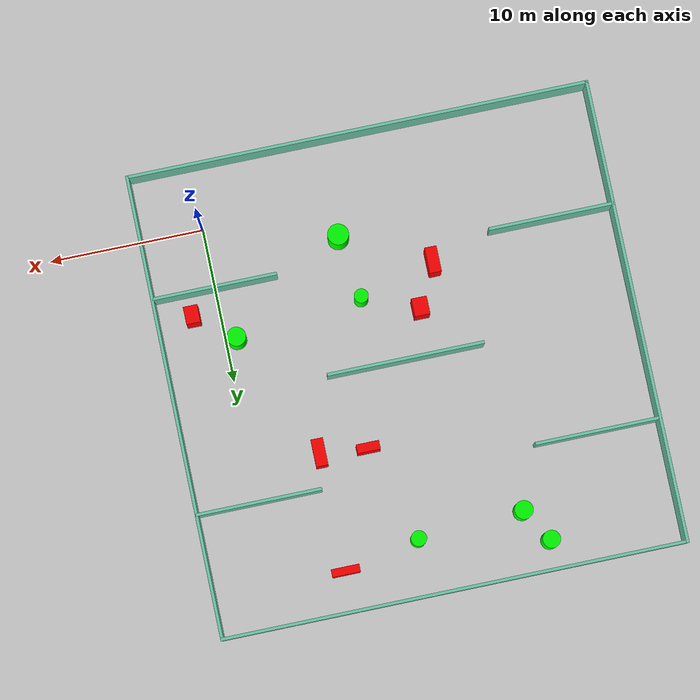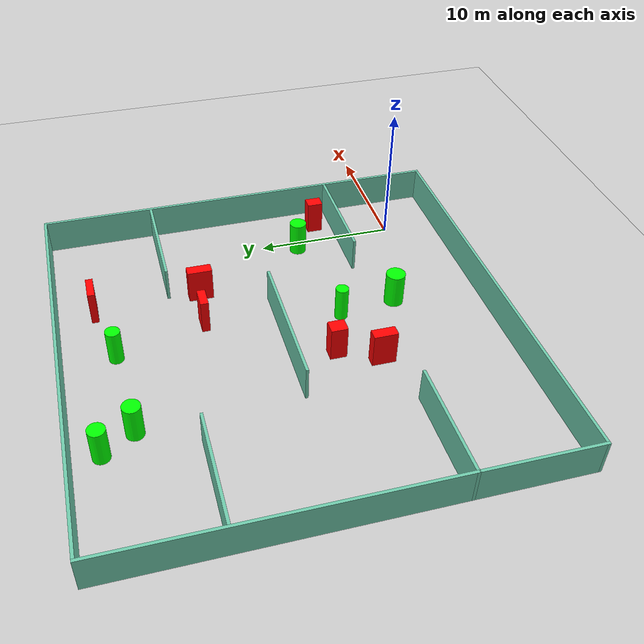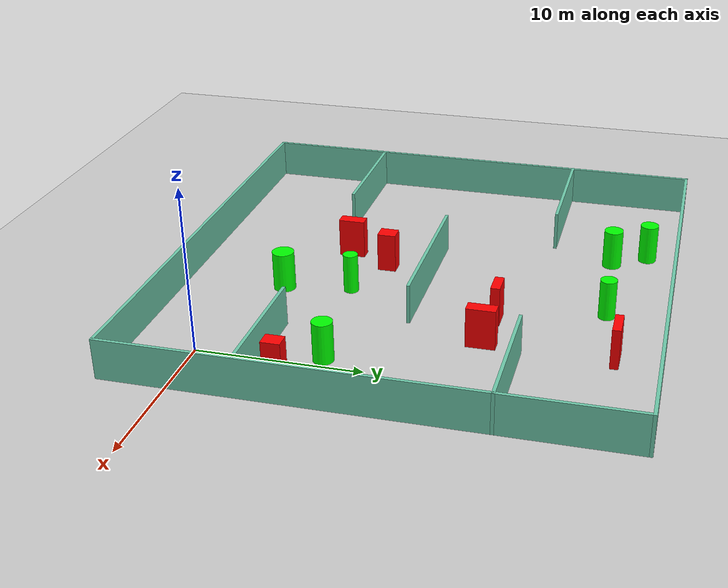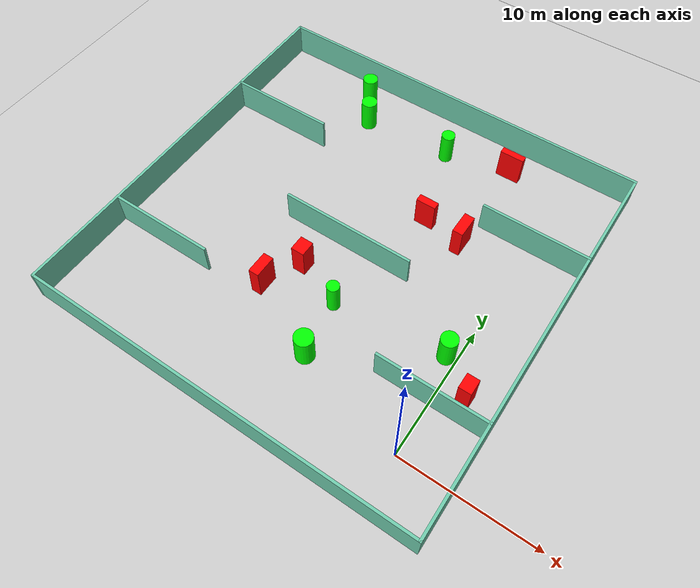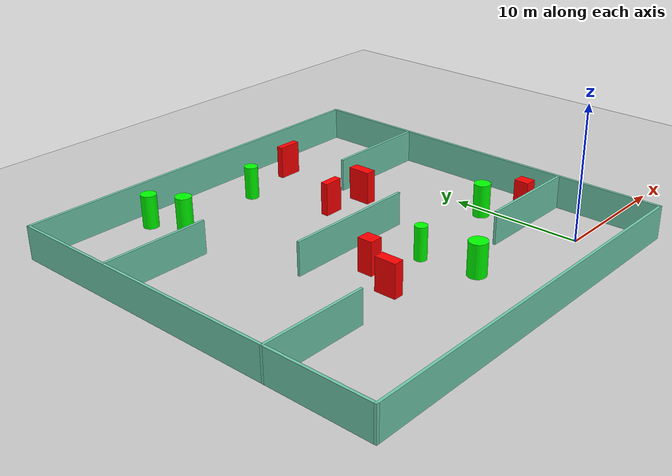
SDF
<sdf version="1.7">
 <world name="default">
  <light name="sun" type="directional">
   <pose>0 0 10 0 -0 0</pose>
   <diffuse>0.8 0.8 0.8 1</diffuse>
   <specular>0.2 0.2 0.2 1</specular>
   <attenuation>
    <range>1000</range>
    <constant>0.9</constant>
    <linear>0.01</linear>
    <quadratic>0.001</quadratic>
   </attenuation>
   <direction>-0.5 0.1 -0.9</direction>
   <spot><inner_angle>0</inner_angle><outer_angle>0</outer_angle><falloff>0</falloff></spot>
  </light>
  <model name="ground_plane">
   <static>1</static>
   <link name="link">
    <collision name="collision">
     <geometry><plane><normal>0 0 1</normal><size>100 100</size></plane></geometry>
     <surface>
      <contact><collide_bitmask>65535</collide_bitmask></contact>
      <friction><ode><mu>100</mu><mu2>50</mu2></ode></friction>
     </surface>
    </collision>
    <visual name="visual">
     <cast_shadows>0</cast_shadows>
     <geometry><plane><normal>0 0 1</normal><size>100 100</size></plane></geometry>
     <material>
      <script><uri>file://media/materials/scripts/gazebo.material</uri><name>Gazebo/Grey</name></script>
     </material>
    </visual>
   </link>
  </model>
  <gravity>0 0 -9.8</gravity>
  <magnetic_field>6e-06 2.3e-05 -4.2e-05</magnetic_field>
  <atmosphere type="adiabatic"/>
  <physics type="ode">
   <max_step_size>0.001</max_step_size>
   <real_time_factor>1</real_time_factor>
   <real_time_update_rate>1000</real_time_update_rate>
  </physics>
  <scene><ambient>0.4 0.4 0.4 1</ambient><background>0.7 0.7 0.7 1</background><shadows>1</shadows></scene>
  <spherical_coordinates>
   <surface_model>EARTH_WGS84</surface_model>
   <latitude_deg>0</latitude_deg>
   <longitude_deg>0</longitude_deg>
   <elevation>0</elevation>
   <heading_deg>0</heading_deg>
  </spherical_coordinates>
  <model name="my_base_walls">
   <link name="Wall_10">
    <collision name="Wall_10_Collision">
     <geometry><box><size>8.2 0.2 2.5</size></box></geometry>
     <pose>0 0 1.25 0 -0 0</pose>
    </collision>
    <visual name="Wall_10_Visual">
     <pose>0 0 1.25 0 -0 0</pose>
     <geometry><box><size>8.2 0.2 2.5</size></box></geometry>
     <material>
      <script><uri>file://media/materials/scripts/gazebo.material</uri><name>Gazebo/Grey</name></script>
      <ambient>0.435294 0.796078 0.67451 1</ambient>
     </material>
     <meta><layer>0</layer></meta>
    </visual>
    <pose>-11 -7 0 0 -0 0</pose>
   </link>
   <link name="Wall_12">
    <collision name="Wall_12_Collision">
     <geometry><box><size>8.2 0.2 2.5</size></box></geometry>
     <pose>0 0 1.25 0 -0 0</pose>
    </collision>
    <visual name="Wall_12_Visual">
     <pose>0 0 1.25 0 -0 0</pose>
     <geometry><box><size>8.2 0.2 2.5</size></box></geometry>
     <material>
      <script><uri>file://media/materials/scripts/gazebo.material</uri><name>Gazebo/Grey</name></script>
      <ambient>0.435294 0.796078 0.67451 1</ambient>
     </material>
     <meta><layer>0</layer></meta>
    </visual>
    <pose>-11 7 0 0 -0 0</pose>
   </link>
   <link name="Wall_14">
    <collision name="Wall_14_Collision">
     <geometry><box><size>8.2 0.2 2.5</size></box></geometry>
     <pose>0 0 1.25 0 -0 0</pose>
    </collision>
    <visual name="Wall_14_Visual">
     <pose>0 0 1.25 0 -0 0</pose>
     <geometry><box><size>8.2 0.2 2.5</size></box></geometry>
     <material>
      <script><uri>file://media/materials/scripts/gazebo.material</uri><name>Gazebo/Grey</name></script>
      <ambient>0.435294 0.796078 0.67451 1</ambient>
     </material>
     <meta><layer>0</layer></meta>
    </visual>
    <pose>11 7 0 0 -0 3.14159</pose>
   </link>
   <link name="Wall_16">
    <collision name="Wall_16_Collision">
     <geometry><box><size>10.2 0.2 2.5</size></box></geometry>
     <pose>0 0 1.25 0 -0 0</pose>
    </collision>
    <visual name="Wall_16_Visual">
     <pose>0 0 1.25 0 -0 0</pose>
     <geometry><box><size>10.2 0.2 2.5</size></box></geometry>
     <material>
      <script><uri>file://media/materials/scripts/gazebo.material</uri><name>Gazebo/Grey</name></script>
      <ambient>0.435294 0.796078 0.67451 1</ambient>
     </material>
     <meta><layer>0</layer></meta>
    </visual>
    <pose>0 0 0 0 -0 3.14159</pose>
   </link>
   <link name="Wall_2">
    <collision name="Wall_2_Collision">
     <geometry><box><size>30.2 0.2 2.5</size></box></geometry>
     <pose>0 0 1.25 0 -0 0</pose>
    </collision>
    <visual name="Wall_2_Visual">
     <pose>0 0 1.25 0 -0 0</pose>
     <geometry><box><size>30.2 0.2 2.5</size></box></geometry>
     <material>
      <script><uri>file://media/materials/scripts/gazebo.material</uri><name>Gazebo/Grey</name></script>
      <ambient>0.435294 0.796078 0.67451 1</ambient>
     </material>
     <meta><layer>0</layer></meta>
    </visual>
    <pose>0 -15 0 0 -0 3.14159</pose>
   </link>
   <link name="Wall_3">
    <collision name="Wall_3_Collision">
     <geometry><box><size>30.2 0.2 2.5</size></box></geometry>
     <pose>0 0 1.25 0 -0 0</pose>
    </collision>
    <visual name="Wall_3_Visual">
     <pose>0 0 1.25 0 -0 0</pose>
     <geometry><box><size>30.2 0.2 2.5</size></box></geometry>
     <material>
      <script><uri>file://media/materials/scripts/gazebo.material</uri><name>Gazebo/Grey</name></script>
      <ambient>0.435294 0.796078 0.67451 1</ambient>
     </material>
     <meta><layer>0</layer></meta>
    </visual>
    <pose>-15 0 0 0 -0 1.5708</pose>
   </link>
   <link name="Wall_4">
    <collision name="Wall_4_Collision">
     <geometry><box><size>30.2 0.2 2.5</size></box></geometry>
     <pose>0 0 1.25 0 -0 0</pose>
    </collision>
    <visual name="Wall_4_Visual">
     <pose>0 0 1.25 0 -0 0</pose>
     <geometry><box><size>30.2 0.2 2.5</size></box></geometry>
     <material>
      <script><uri>file://media/materials/scripts/gazebo.material</uri><name>Gazebo/Grey</name></script>
      <ambient>0.435294 0.796078 0.67451 1</ambient>
     </material>
     <meta><layer>0</layer></meta>
    </visual>
    <pose>0 15 0 0 -0 0</pose>
   </link>
   <link name="Wall_6">
    <collision name="Wall_6_Collision">
     <geometry><box><size>30.2 0.2 2.5</size></box></geometry>
     <pose>0 0 1.25 0 -0 0</pose>
    </collision>
    <visual name="Wall_6_Visual">
     <pose>0 0 1.25 0 -0 0</pose>
     <geometry><box><size>30.2 0.2 2.5</size></box></geometry>
     <material>
      <script><uri>file://media/materials/scripts/gazebo.material</uri><name>Gazebo/Grey</name></script>
      <ambient>0.435294 0.796078 0.67451 1</ambient>
     </material>
     <meta><layer>0</layer></meta>
    </visual>
    <pose>15 0 0 0 -0 1.5708</pose>
   </link>
   <link name="Wall_8">
    <collision name="Wall_8_Collision">
     <geometry><box><size>8.2 0.2 2.5</size></box></geometry>
     <pose>0 0 1.25 0 -0 0</pose>
    </collision>
    <visual name="Wall_8_Visual">
     <pose>0 0 1.25 0 -0 0</pose>
     <geometry><box><size>8.2 0.2 2.5</size></box></geometry>
     <material>
      <script><uri>file://media/materials/scripts/gazebo.material</uri><name>Gazebo/Grey</name></script>
      <ambient>0.435294 0.796078 0.67451 1</ambient>
     </material>
     <meta><layer>0</layer></meta>
    </visual>
    <pose>11 -7 0 0 -0 3.14159</pose>
   </link>
   <static>1</static>
   <pose>-11 11 0 0 -0 0</pose>
  </model>
  <model name="cylinder1">
   <static>1</static>
   <link name="link">
    <inertial>
     <mass>1</mass>
     <inertia><ixx>0.5</ixx><ixy>0</ixy><ixz>0</ixz><iyy>0.5</iyy><iyz>0</iyz><izz>1</izz></inertia>
    </inertial>
    <collision name="collision">
     <geometry><cylinder><radius>0.68636201466087</radius><length>2.5</length></cylinder></geometry>
    </collision>
    <visual name="visual">
     <geometry><cylinder><radius>0.68636201466087</radius><length>2.5</length></cylinder></geometry>
     <material>
      <ambient>0 1 0 1</ambient>
      <diffuse>0 1 0 1</diffuse>
      <specular>0.1 0.1 0.1 1</specular>
      <emissive>0 0 0 0</emissive>
     </material>
    </visual>
   </link>
   <pose>-8.429512235108886 2.361934679447475 1.25 0 0 0</pose>
  </model>
  <model name="cylinder2">
   <static>1</static>
   <link name="link">
    <inertial>
     <mass>1</mass>
     <inertia><ixx>0.5</ixx><ixy>0</ixy><ixz>0</ixz><iyy>0.5</iyy><iyz>0</iyz><izz>1</izz></inertia>
    </inertial>
    <collision name="collision">
     <geometry><cylinder><radius>0.6024043250596158</radius><length>2.5</length></cylinder></geometry>
    </collision>
    <visual name="visual">
     <geometry><cylinder><radius>0.6024043250596158</radius><length>2.5</length></cylinder></geometry>
     <material>
      <ambient>0 1 0 1</ambient>
      <diffuse>0 1 0 1</diffuse>
      <specular>0.1 0.1 0.1 1</specular>
      <emissive>0 0 0 0</emissive>
     </material>
    </visual>
   </link>
   <pose>-16.316740097860674 21.941255306115792 1.25 0 0 0</pose>
  </model>
  <model name="cylinder3">
   <static>1</static>
   <link name="link">
    <inertial>
     <mass>1</mass>
     <inertia><ixx>0.5</ixx><ixy>0</ixy><ixz>0</ixz><iyy>0.5</iyy><iyz>0</iyz><izz>1</izz></inertia>
    </inertial>
    <collision name="collision">
     <geometry><cylinder><radius>0.4618749586690039</radius><length>2.5</length></cylinder></geometry>
    </collision>
    <visual name="visual">
     <geometry><cylinder><radius>0.4618749586690039</radius><length>2.5</length></cylinder></geometry>
     <material>
      <ambient>0 1 0 1</ambient>
      <diffuse>0 1 0 1</diffuse>
      <specular>0.1 0.1 0.1 1</specular>
      <emissive>0 0 0 0</emissive>
     </material>
    </visual>
   </link>
   <pose>-9.058695331235494 6.514918422767252 1.25 0 0 0</pose>
  </model>
  <model name="cylinder4">
   <static>1</static>
   <link name="link">
    <inertial>
     <mass>1</mass>
     <inertia><ixx>0.5</ixx><ixy>0</ixy><ixz>0</ixz><iyy>0.5</iyy><iyz>0</iyz><izz>1</izz></inertia>
    </inertial>
    <collision name="collision">
     <geometry><cylinder><radius>0.6154728769331339</radius><length>2.5</length></cylinder></geometry>
    </collision>
    <visual name="visual">
     <geometry><cylinder><radius>0.6154728769331339</radius><length>2.5</length></cylinder></geometry>
     <material>
      <ambient>0 1 0 1</ambient>
      <diffuse>0 1 0 1</diffuse>
      <specular>0.1 0.1 0.1 1</specular>
      <emissive>0 0 0 0</emissive>
     </material>
    </visual>
   </link>
   <pose>-0.7591179972474293 7.429867670949836 1.25 0 0 0</pose>
  </model>
  <model name="cylinder5">
   <static>1</static>
   <link name="link">
    <inertial>
     <mass>1</mass>
     <inertia><ixx>0.5</ixx><ixy>0</ixy><ixz>0</ixz><iyy>0.5</iyy><iyz>0</iyz><izz>1</izz></inertia>
    </inertial>
    <collision name="collision">
     <geometry><cylinder><radius>0.5758511863363478</radius><length>2.5</length></cylinder></geometry>
    </collision>
    <visual name="visual">
     <geometry><cylinder><radius>0.5758511863363478</radius><length>2.5</length></cylinder></geometry>
     <material>
      <ambient>0 1 0 1</ambient>
      <diffuse>0 1 0 1</diffuse>
      <specular>0.1 0.1 0.1 1</specular>
      <emissive>0 0 0 0</emissive>
     </material>
    </visual>
   </link>
   <pose>-17.64247257893608 24.11218399456672 1.25 0 0 0</pose>
  </model>
  <model name="cylinder6">
   <static>1</static>
   <link name="link">
    <inertial>
     <mass>1</mass>
     <inertia><ixx>0.5</ixx><ixy>0</ixy><ixz>0</ixz><iyy>0.5</iyy><iyz>0</iyz><izz>1</izz></inertia>
    </inertial>
    <collision name="collision">
     <geometry><cylinder><radius>0.5088890622144746</radius><length>2.5</length></cylinder></geometry>
    </collision>
    <visual name="visual">
     <geometry><cylinder><radius>0.5088890622144746</radius><length>2.5</length></cylinder></geometry>
     <material>
      <ambient>0 1 0 1</ambient>
      <diffuse>0 1 0 1</diffuse>
      <specular>0.1 0.1 0.1 1</specular>
      <emissive>0 0 0 0</emissive>
     </material>
    </visual>
   </link>
   <pose>-9.446511682689662 22.343918987521246 1.25 0 0 0</pose>
  </model>
  <model name="box1">
   <static>1</static>
   <link name="link">
    <inertial>
     <mass>1</mass>
     <inertia><ixx>0.083</ixx><ixy>0</ixy><ixz>0</ixz><iyy>0.083</iyy><iyz>0</iyz><izz>0.083</izz></inertia>
    </inertial>
    <collision name="collision">
     <geometry><box><size>1.4912487235726775 0.5721877099481874 2.5</size></box></geometry>
    </collision>
    <visual name="visual">
     <geometry><box><size>1.4912487235726775 0.5721877099481874 2.5</size></box></geometry>
     <material>
      <ambient>1 0 0 1</ambient>
      <diffuse>1 0 0 1</diffuse>
      <specular>0.1 0.1 0.1 1</specular>
      <emissive>0 0 0 0</emissive>
     </material>
    </visual>
    <sensor name="my_contact" type="contact">
     <contact><collision>box_collision</collision><topic>__default_topic__</topic></contact>
    </sensor>
   </link>
   <pose>-7.506468310798187 16.020578906608158 1.25 0 0 0</pose>
  </model>
  <model name="box2">
   <static>1</static>
   <link name="link">
    <inertial>
     <mass>1</mass>
     <inertia><ixx>0.083</ixx><ixy>0</ixy><ixz>0</ixz><iyy>0.083</iyy><iyz>0</iyz><izz>0.083</izz></inertia>
    </inertial>
    <collision name="collision">
     <geometry><box><size>0.9984089000938838 1.1597482200776568 2.5</size></box></geometry>
    </collision>
    <visual name="visual">
     <geometry><box><size>0.9984089000938838 1.1597482200776568 2.5</size></box></geometry>
     <material>
      <ambient>1 0 0 1</ambient>
      <diffuse>1 0 0 1</diffuse>
      <specular>0.1 0.1 0.1 1</specular>
      <emissive>0 0 0 0</emissive>
     </material>
    </visual>
    <sensor name="my_contact" type="contact">
     <contact><collision>box_collision</collision><topic>__default_topic__</topic></contact>
    </sensor>
   </link>
   <pose>-12.616903468966003 7.945787110985151 1.25 0 0 0</pose>
  </model>
  <model name="box3">
   <static>1</static>
   <link name="link">
    <inertial>
     <mass>1</mass>
     <inertia><ixx>0.083</ixx><ixy>0</ixy><ixz>0</ixz><iyy>0.083</iyy><iyz>0</iyz><izz>0.083</izz></inertia>
    </inertial>
    <collision name="collision">
     <geometry><box><size>0.771801338464023 1.6695472883192897 2.5</size></box></geometry>
    </collision>
    <visual name="visual">
     <geometry><box><size>0.771801338464023 1.6695472883192897 2.5</size></box></geometry>
     <material>
      <ambient>1 0 0 1</ambient>
      <diffuse>1 0 0 1</diffuse>
      <specular>0.1 0.1 0.1 1</specular>
      <emissive>0 0 0 0</emissive>
     </material>
    </visual>
    <sensor name="my_contact" type="contact">
     <contact><collision>box_collision</collision><topic>__default_topic__</topic></contact>
    </sensor>
   </link>
   <pose>-14.009155883506908 5.181046965715332 1.25 0 0 0</pose>
  </model>
  <model name="box4">
   <static>1</static>
   <link name="link">
    <inertial>
     <mass>1</mass>
     <inertia><ixx>0.083</ixx><ixy>0</ixy><ixz>0</ixz><iyy>0.083</iyy><iyz>0</iyz><izz>0.083</izz></inertia>
    </inertial>
    <collision name="collision">
     <geometry><box><size>1.8157140845805126 0.5031671367279895 2.5</size></box></geometry>
    </collision>
    <visual name="visual">
     <geometry><box><size>1.8157140845805126 0.5031671367279895 2.5</size></box></geometry>
     <material>
      <ambient>1 0 0 1</ambient>
      <diffuse>1 0 0 1</diffuse>
      <specular>0.1 0.1 0.1 1</specular>
      <emissive>0 0 0 0</emissive>
     </material>
    </visual>
    <sensor name="my_contact" type="contact">
     <contact><collision>box_collision</collision><topic>__default_topic__</topic></contact>
    </sensor>
   </link>
   <pose>-4.511322755744793 23.37705319138568 1.25 0 0 0</pose>
  </model>
  <model name="box5">
   <static>1</static>
   <link name="link">
    <inertial>
     <mass>1</mass>
     <inertia><ixx>0.083</ixx><ixy>0</ixy><ixz>0</ixz><iyy>0.083</iyy><iyz>0</iyz><izz>0.083</izz></inertia>
    </inertial>
    <collision name="collision">
     <geometry><box><size>0.9098234371257505 1.1394919735761933 2.5</size></box></geometry>
    </collision>
    <visual name="visual">
     <geometry><box><size>0.9098234371257505 1.1394919735761933 2.5</size></box></geometry>
     <material>
      <ambient>1 0 0 1</ambient>
      <diffuse>1 0 0 1</diffuse>
      <specular>0.1 0.1 0.1 1</specular>
      <emissive>0 0 0 0</emissive>
     </material>
    </visual>
    <sensor name="my_contact" type="contact">
     <contact><collision>box_collision</collision><topic>__default_topic__</topic></contact>
    </sensor>
   </link>
   <pose>1.727278887242715 5.468067598856937 1.25 0 0 0</pose>
  </model>
  <model name="box6">
   <static>1</static>
   <link name="link">
    <inertial>
     <mass>1</mass>
     <inertia><ixx>0.083</ixx><ixy>0</ixy><ixz>0</ixz><iyy>0.083</iyy><iyz>0</iyz><izz>0.083</izz></inertia>
    </inertial>
    <collision name="collision">
     <geometry><box><size>0.7834639723506827 1.7613958736006798 2.5</size></box></geometry>
    </collision>
    <visual name="visual">
     <geometry><box><size>0.7834639723506827 1.7613958736006798 2.5</size></box></geometry>
     <material>
      <ambient>1 0 0 1</ambient>
      <diffuse>1 0 0 1</diffuse>
      <specular>0.1 0.1 0.1 1</specular>
      <emissive>0 0 0 0</emissive>
     </material>
    </visual>
    <sensor name="my_contact" type="contact">
     <contact><collision>box_collision</collision><topic>__default_topic__</topic></contact>
    </sensor>
   </link>
   <pose>-4.41702606030848 15.71681793236521 1.25 0 0 0</pose>
  </model>
 </world>
</sdf>
